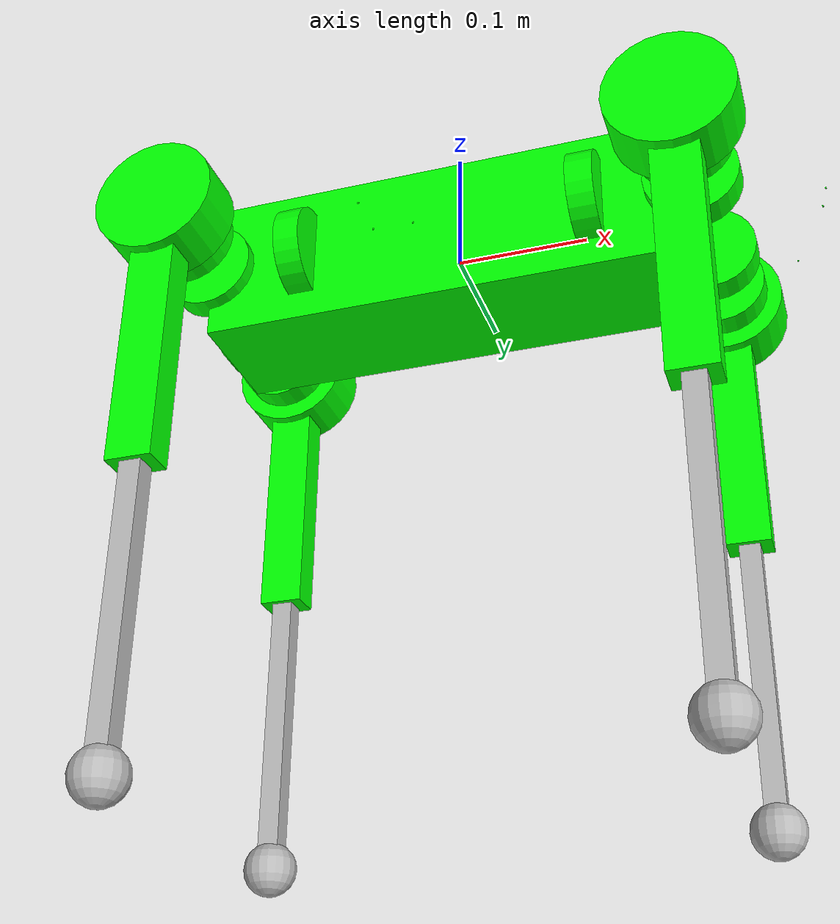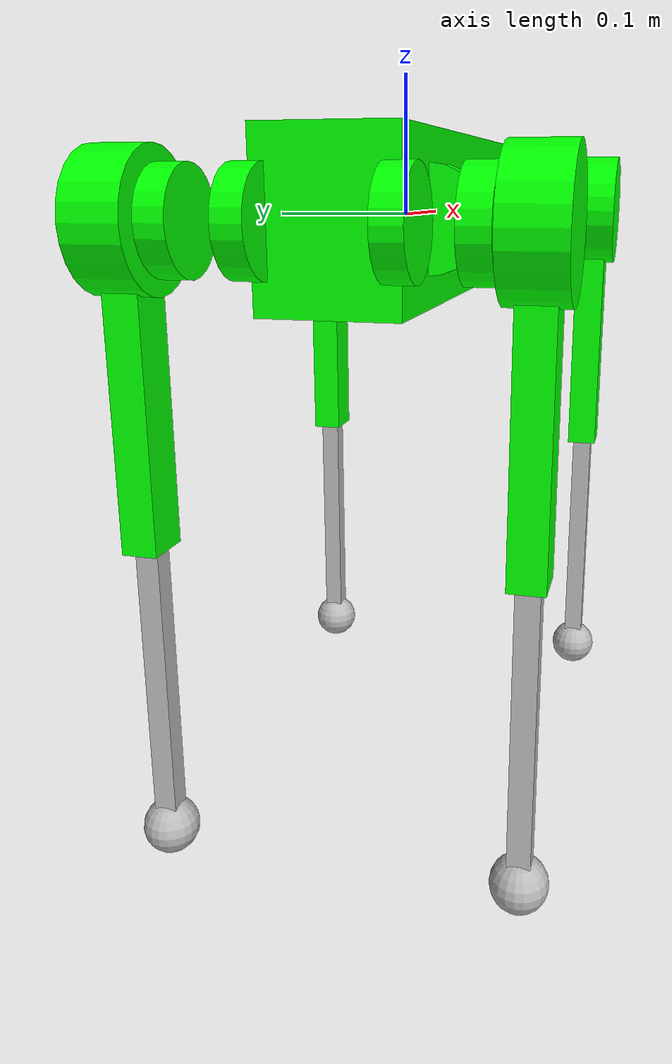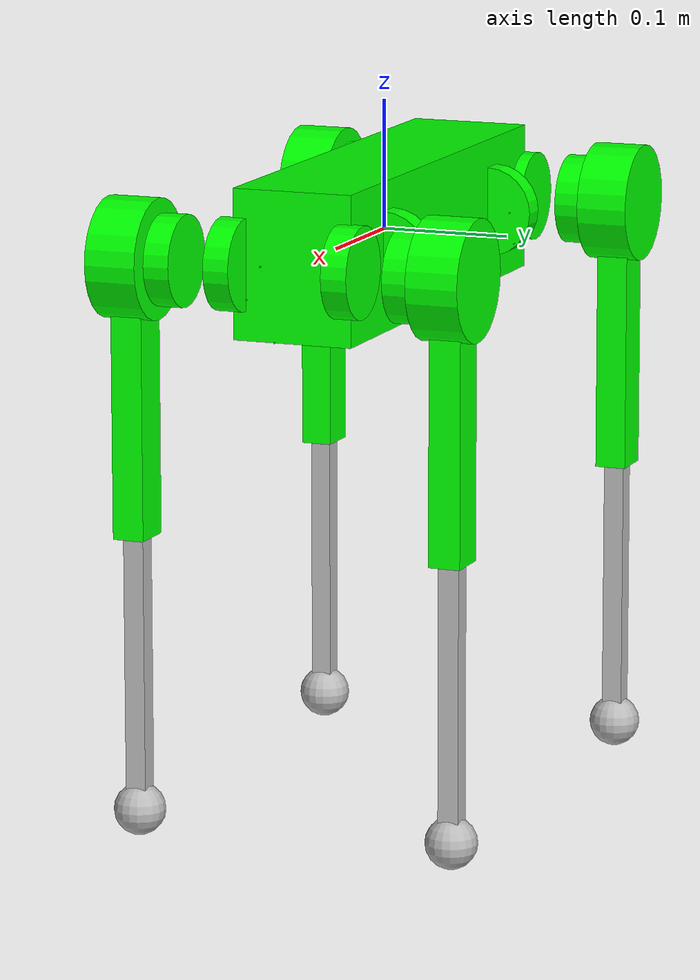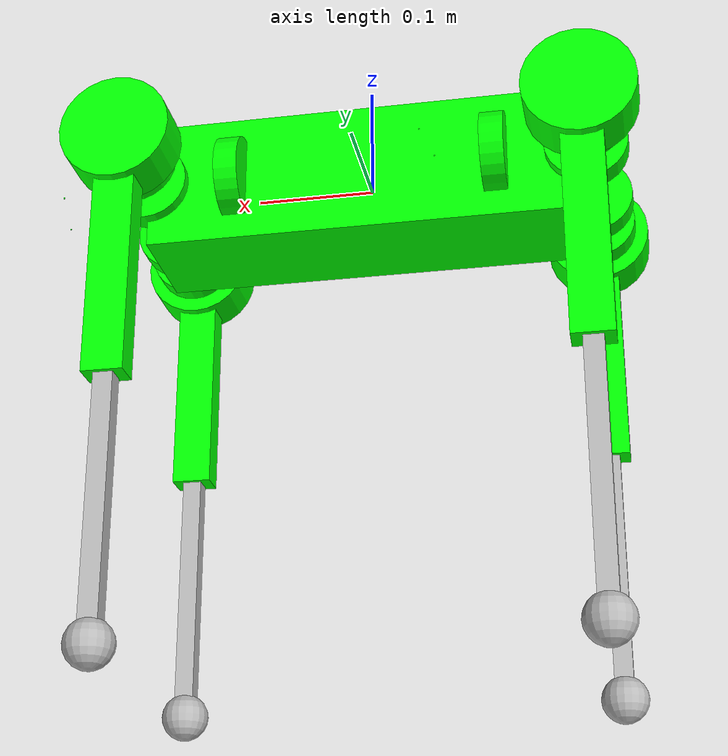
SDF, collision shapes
<sdf version='1.11'>
  <model name='go2'>
    <link name='base'>
      <inertial>
        <pose>0.020866157113366479 0.001859672042121315 -0.00046917899041193432 0 0 0</pose>
        <mass>5.5610799999999987</mass>
        <inertia>
          <ixx>0.018152741714880381</ixx>
          <ixy>-0.00024707762715734321</ixy>
          <ixz>-0.00029100362356646752</ixz>
          <iyy>0.068003178569477754</iyy>
          <iyz>-4.1923289795357292e-05</iyz>
          <izz>0.077432530599337079</izz>
        </inertia>
      </inertial>
      <collision name='base_fixed_joint_lump__trunk_collision'>
        <pose>0 0 0 0 0 0</pose>
        <geometry>
          <box>
            <size>0.37619999999999998 0.0935 0.114</size>
          </box>
        </geometry>
      </collision>
      <collision name='base_fixed_joint_lump__camera_chin_collision_1'>
        <pose>0.25219999999999998 0.012500000000000001 -0.0436 3.1415926535897931 1.5707963267948966 0</pose>
        <geometry>
          <box>
            <size>0.001 0.001 0.001</size>
          </box>
        </geometry>
      </collision>
      <collision name='base_fixed_joint_lump__camera_face_collision_2'>
        <pose>0.27850000000000003 0.012500000000000001 0.0167 3.1415926535897931 0 0</pose>
        <geometry>
          <box>
            <size>0.001 0.001 0.001</size>
          </box>
        </geometry>
      </collision>
      <collision name='base_fixed_joint_lump__camera_left_collision_3'>
        <pose>-0.066000000000000003 0.082000000000000003 -0.017600000000000001 3.1415926535897931 0.26179999999999998 1.5707963267948957</pose>
        <geometry>
          <box>
            <size>0.001 0.001 0.001</size>
          </box>
        </geometry>
      </collision>
      <collision name='base_fixed_joint_lump__camera_rearDown_collision_4'>
        <pose>-0.082500000000000004 0.012500000000000001 -0.043650000000000001 3.1415926535897931 1.5707963267948966 0</pose>
        <geometry>
          <box>
            <size>0.001 0.001 0.001</size>
          </box>
        </geometry>
      </collision>
      <collision name='base_fixed_joint_lump__camera_right_collision_5'>
        <pose>-0.041000000000000002 -0.082000000000000003 -0.017600000000000001 3.1415926535897931 0.26179999999999998 -1.570796326794897</pose>
        <geometry>
          <box>
            <size>0.001 0.001 0.001</size>
          </box>
        </geometry>
      </collision>
      <collision name='base_fixed_joint_lump__imu_link_collision_6'>
        <pose>-0.01592 -0.066589999999999996 -0.0061700000000000001 0 0 0</pose>
        <geometry>
          <box>
            <size>0.001 0.001 0.001</size>
          </box>
        </geometry>
      </collision>
      <collision name='base_fixed_joint_lump__lf_hipassembly_rotor_collision_7'>
        <pose>0.11215 0.04675 0 0 1.5707963267948966 0</pose>
        <geometry>
          <cylinder>
            <length>0.02</length>
            <radius>0.035000000000000003</radius>
          </cylinder>
        </geometry>
      </collision>
      <collision name='base_fixed_joint_lump__lh_hipassembly_rotor_collision_8'>
        <pose>-0.11215 0.04675 0 0 1.5707963267948966 0</pose>
        <geometry>
          <cylinder>
            <length>0.02</length>
            <radius>0.035000000000000003</radius>
          </cylinder>
        </geometry>
      </collision>
      <collision name='base_fixed_joint_lump__rf_hipassembly_rotor_collision_9'>
        <pose>0.11215 -0.04675 0 0 1.5707963267948966 0</pose>
        <geometry>
          <cylinder>
            <length>0.02</length>
            <radius>0.035000000000000003</radius>
          </cylinder>
        </geometry>
      </collision>
      <collision name='base_fixed_joint_lump__rh_hipassembly_rotor_collision_10'>
        <pose>-0.11215 -0.04675 0 0 1.5707963267948966 0</pose>
        <geometry>
          <cylinder>
            <length>0.02</length>
            <radius>0.035000000000000003</radius>
          </cylinder>
        </geometry>
      </collision>
      <collision name='base_fixed_joint_lump__ultraSound_face_collision_11'>
        <pose>0.2747 0 -0.0088000000000000005 0 0 0</pose>
        <geometry>
          <box>
            <size>0.001 0.001 0.001</size>
          </box>
        </geometry>
      </collision>
      <collision name='base_fixed_joint_lump__ultraSound_left_collision_12'>
        <pose>-0.053499999999999999 0.082600000000000007 0.0086800000000000002 0 0.26179999999999998 1.570796326794897</pose>
        <geometry>
          <box>
            <size>0.001 0.001 0.001</size>
          </box>
        </geometry>
      </collision>
      <collision name='base_fixed_joint_lump__ultraSound_right_collision_13'>
        <pose>-0.053499999999999999 -0.082600000000000007 0.0086800000000000002 0 0.26179999999999998 -1.570796326794897</pose>
        <geometry>
          <box>
            <size>0.001 0.001 0.001</size>
          </box>
        </geometry>
      </collision>
      <visual name='base_visual'>
        <pose>0 0 0 0 0 0</pose>
        <geometry>
          <box>
            <size>0.001 0.001 0.001</size>
          </box>
        </geometry>
      </visual>
      <visual name='base_fixed_joint_lump__trunk_visual_1'>
        <pose>0 0 0 0 0 0</pose>
        <geometry>
          <mesh>
            <scale>1 1 1</scale>
            <uri>models/unitree_go2/meshes/trunk/trunk.dae</uri>
          </mesh>
        </geometry>
      </visual>
      <visual name='base_fixed_joint_lump__camera_chin_visual_2'>
        <pose>0.25219999999999998 0.012500000000000001 -0.0436 3.1415926535897931 1.5707963267948966 0</pose>
        <geometry>
          <mesh>
            <scale>1 1 1</scale>
            <uri>models/unitree_go2/meshes/depthCamera.dae</uri>
          </mesh>
        </geometry>
      </visual>
      <visual name='base_fixed_joint_lump__camera_face_visual_3'>
        <pose>0.27850000000000003 0.012500000000000001 0.0167 3.1415926535897931 0 0</pose>
        <geometry>
          <mesh>
            <scale>1 1 1</scale>
            <uri>models/unitree_go2/meshes/depthCamera.dae</uri>
          </mesh>
        </geometry>
      </visual>
      <visual name='base_fixed_joint_lump__camera_left_visual_4'>
        <pose>-0.066000000000000003 0.082000000000000003 -0.017600000000000001 3.1415926535897931 0.26179999999999998 1.5707963267948957</pose>
        <geometry>
          <mesh>
            <scale>1 1 1</scale>
            <uri>models/unitree_go2/meshes/depthCamera.dae</uri>
          </mesh>
        </geometry>
      </visual>
      <visual name='base_fixed_joint_lump__camera_rearDown_visual_5'>
        <pose>-0.082500000000000004 0.012500000000000001 -0.043650000000000001 3.1415926535897931 1.5707963267948966 0</pose>
        <geometry>
          <mesh>
            <scale>1 1 1</scale>
            <uri>models/unitree_go2/meshes/depthCamera.dae</uri>
          </mesh>
        </geometry>
      </visual>
      <visual name='base_fixed_joint_lump__camera_right_visual_6'>
        <pose>-0.041000000000000002 -0.082000000000000003 -0.017600000000000001 3.1415926535897931 0.26179999999999998 -1.570796326794897</pose>
        <geometry>
          <mesh>
            <scale>1 1 1</scale>
            <uri>models/unitree_go2/meshes/depthCamera.dae</uri>
          </mesh>
        </geometry>
      </visual>
      <visual name='base_fixed_joint_lump__imu_link_visual_7'>
        <pose>-0.01592 -0.066589999999999996 -0.0061700000000000001 0 0 0</pose>
        <geometry>
          <box>
            <size>0.001 0.001 0.001</size>
          </box>
        </geometry>
      </visual>
      <visual name='base_fixed_joint_lump__lf_hipassembly_rotor_visual_8'>
        <pose>0.11215 0.04675 0 0 1.5707963267948966 0</pose>
        <geometry>
          <cylinder>
            <length>0.02</length>
            <radius>0.035000000000000003</radius>
          </cylinder>
        </geometry>
        <material>
          <diffuse>0 1 0 1</diffuse>
          <ambient>0 1 0 1</ambient>
        </material>
      </visual>
      <visual name='base_fixed_joint_lump__lh_hipassembly_rotor_visual_9'>
        <pose>-0.11215 0.04675 0 0 1.5707963267948966 0</pose>
        <geometry>
          <cylinder>
            <length>0.02</length>
            <radius>0.035000000000000003</radius>
          </cylinder>
        </geometry>
        <material>
          <diffuse>0 1 0 1</diffuse>
          <ambient>0 1 0 1</ambient>
        </material>
      </visual>
      <visual name='base_fixed_joint_lump__rf_hipassembly_rotor_visual_10'>
        <pose>0.11215 -0.04675 0 0 1.5707963267948966 0</pose>
        <geometry>
          <cylinder>
            <length>0.02</length>
            <radius>0.035000000000000003</radius>
          </cylinder>
        </geometry>
        <material>
          <diffuse>0 1 0 1</diffuse>
          <ambient>0 1 0 1</ambient>
        </material>
      </visual>
      <visual name='base_fixed_joint_lump__rh_hipassembly_rotor_visual_11'>
        <pose>-0.11215 -0.04675 0 0 1.5707963267948966 0</pose>
        <geometry>
          <cylinder>
            <length>0.02</length>
            <radius>0.035000000000000003</radius>
          </cylinder>
        </geometry>
        <material>
          <diffuse>0 1 0 1</diffuse>
          <ambient>0 1 0 1</ambient>
        </material>
      </visual>
      <visual name='base_fixed_joint_lump__ultraSound_face_visual_12'>
        <pose>0.2747 0 -0.0088000000000000005 0 0 0</pose>
        <geometry>
          <mesh>
            <scale>1 1 1</scale>
            <uri>models/unitree_go2/meshes/ultraSound.dae</uri>
          </mesh>
        </geometry>
        <material>
          <diffuse>0 0 0 1</diffuse>
          <ambient>0 0 0 1</ambient>
        </material>
      </visual>
      <visual name='base_fixed_joint_lump__ultraSound_left_visual_13'>
        <pose>-0.053499999999999999 0.082600000000000007 0.0086800000000000002 0 0.26179999999999998 1.570796326794897</pose>
        <geometry>
          <mesh>
            <scale>1 1 1</scale>
            <uri>models/unitree_go2/meshes/ultraSound.dae</uri>
          </mesh>
        </geometry>
        <material>
          <diffuse>0 0 0 1</diffuse>
          <ambient>0 0 0 1</ambient>
        </material>
      </visual>
      <visual name='base_fixed_joint_lump__ultraSound_right_visual_14'>
        <pose>-0.053499999999999999 -0.082600000000000007 0.0086800000000000002 0 0.26179999999999998 -1.570796326794897</pose>
        <geometry>
          <mesh>
            <scale>1 1 1</scale>
            <uri>models/unitree_go2/meshes/ultraSound.dae</uri>
          </mesh>
        </geometry>
        <material>
          <diffuse>0 0 0 1</diffuse>
          <ambient>0 0 0 1</ambient>
        </material>
      </visual>
      <sensor name="imu" type="imu">
        <always_on>1</always_on>
        <update_rate>100</update_rate>
        <visualize>true</visualize>
        <topic>/model/go2/link/base/sensor/imu/imu</topic>
      </sensor>
    </link>
    <joint name='lf_haa_joint' type='revolute'>
      <pose relative_to='base'>0.18809999999999999 0.04675 0 0 0 0</pose>
      <parent>base</parent>
      <child>lf_hipassembly</child>
      <axis>
        <xyz>1 0 0</xyz>
        <initial_position>0</initial_position>
        <limit>
          <lower>-0.86299999999999999</lower>
          <upper>0.86299999999999999</upper>
          <effort>23.699999999999999</effort>
          <velocity>30.100000000000001</velocity>
        </limit>
        <dynamics>
          <damping>0.1</damping>
          <friction>0.05</friction>
          <spring_reference>0</spring_reference>
          <spring_stiffness>0</spring_stiffness>
        </dynamics>
      </axis>
    </joint>
    <link name='lf_hipassembly'>
      <pose relative_to='lf_haa_joint'>0 0 0 0 0 0</pose>
      <inertial>
        <pose>-0.0049165985294117639 -0.0076261499999999991 -8.865e-05 0 0 0</pose>
        <mass>0.67999999999999994</mass>
        <inertia>
          <ixx>0.0003993797857294</ixx>
          <ixy>-1.4590105668949999e-05</ixy>
          <ixz>1.2460991185500001e-06</ixz>
          <iyy>0.00073341939237609854</iyy>
          <iyz>1.5753255103e-06</iyz>
          <izz>0.00046842209057609862</izz>
        </inertia>
      </inertial>
      <collision name='lf_hipassembly_collision'>
        <pose>0 0.080000000000000002 0 1.5707963267948959 0 0</pose>
        <geometry>
          <cylinder>
            <length>0.040000000000000001</length>
            <radius>0.045999999999999999</radius>
          </cylinder>
        </geometry>
      </collision>
      <collision name='lf_hipassembly_fixed_joint_lump__lf_upperleg_rotor_collision_1'>
        <pose>0 -0.00014999999999999999 0 1.5707963267948959 0 0</pose>
        <geometry>
          <cylinder>
            <length>0.02</length>
            <radius>0.035000000000000003</radius>
          </cylinder>
        </geometry>
      </collision>
      <visual name='lf_hipassembly_visual'>
        <pose>0 0 0 0 0 0</pose>
        <geometry>
          <mesh>
            <scale>1 1 1</scale>
            <uri>models/unitree_go2/meshes/leg/hipassembly.dae</uri>
          </mesh>
        </geometry>
      </visual>
      <visual name='lf_hipassembly_fixed_joint_lump__lf_upperleg_rotor_visual_1'>
        <pose>0 -0.00014999999999999999 0 1.5707963267948959 0 0</pose>
        <geometry>
          <cylinder>
            <length>0.02</length>
            <radius>0.035000000000000003</radius>
          </cylinder>
        </geometry>
        <material>
          <diffuse>0 1 0 1</diffuse>
          <ambient>0 1 0 1</ambient>
        </material>
      </visual>
    </link>
    <joint name='lf_hfe_joint' type='revolute'>
      <pose relative_to='lf_hipassembly'>0 0.080000000000000002 0 0 0 0</pose>
      <parent>lf_hipassembly</parent>
      <child>lf_upperleg</child>
      <axis>
        <xyz>0 1 0</xyz>
        <initial_position>0.8</initial_position>
        <limit>
          <lower>-0.68600000000000005</lower>
          <upper>4.5010000000000003</upper>
          <effort>23.699999999999999</effort>
          <velocity>30.100000000000001</velocity>
        </limit>
        <dynamics>
          <damping>0.1</damping>
          <friction>0.05</friction>
          <spring_reference>0</spring_reference>
          <spring_stiffness>0</spring_stiffness>
        </dynamics>
      </axis>
    </joint>
    <link name='lf_upperleg'>
      <pose relative_to='lf_hfe_joint'>0 0 0 0 0 0</pose>
      <inertial>
        <pose>-0.0030472150644202181 -0.019314995044598611 -0.03050041625371655 0 0 0</pose>
        <mass>1.0089999999999999</mass>
        <inertia>
          <ixx>0.0045987964610901466</ixx>
          <ixy>6.1373912803924688e-05</ixy>
          <ixz>-0.00022752911680967291</ixz>
          <iyy>0.0046892240622995037</iyy>
          <iyz>0.00061080828661791886</iyz>
          <izz>0.00081744785689930629</izz>
        </inertia>
      </inertial>
      <collision name='lf_upperleg_collision'>
        <pose>0 0 -0.1065 0 1.5707963267948966 0</pose>
        <geometry>
          <box>
            <size>0.21299999999999999 0.024500000000000001 0.034000000000000002</size>
          </box>
        </geometry>
      </collision>
      <collision name='lf_upperleg_fixed_joint_lump__lf_lowerleg_rotor_collision_1'>
        <pose>0 -0.032349999999999997 0 1.5707963267948959 0 0</pose>
        <geometry>
          <cylinder>
            <length>0.02</length>
            <radius>0.035000000000000003</radius>
          </cylinder>
        </geometry>
      </collision>
      <visual name='lf_upperleg_visual'>
        <pose>0 0 0 0 0 0</pose>
        <geometry>
          <mesh>
            <scale>1 1 1</scale>
            <uri>models/unitree_go2/meshes/leg/upperleg.dae</uri>
          </mesh>
        </geometry>
      </visual>
      <visual name='lf_upperleg_fixed_joint_lump__lf_lowerleg_rotor_visual_1'>
        <pose>0 -0.032349999999999997 0 1.5707963267948959 0 0</pose>
        <geometry>
          <cylinder>
            <length>0.02</length>
            <radius>0.035000000000000003</radius>
          </cylinder>
        </geometry>
        <material>
          <diffuse>0 1 0 1</diffuse>
          <ambient>0 1 0 1</ambient>
        </material>
      </visual>
    </link>
    <joint name='lf_kfe_joint' type='revolute'>
      <pose relative_to='lf_upperleg'>0 0 -0.21299999999999999 0 0 0</pose>
      <parent>lf_upperleg</parent>
      <child>lf_lowerleg</child>
      <axis>
        <xyz>0 1 0</xyz>
        <initial_position>-1.5</initial_position>
        <limit>
          <lower>-2.8180000000000001</lower>
          <upper>-0.88800000000000001</upper>
          <effort>35.549999999999997</effort>
          <velocity>20.059999999999999</velocity>
        </limit>
        <dynamics>
          <damping>0.1</damping>
          <friction>0.05</friction>
          <spring_reference>0</spring_reference>
          <spring_stiffness>0</spring_stiffness>
        </dynamics>
      </axis>
    </joint>
    <link name='lf_lowerleg'>
      <pose relative_to='lf_kfe_joint'>0 0 0 0 0 0</pose>
      <inertial>
        <pose>0.0061970000000000003 0.001408 -0.11669499999999999 0 0 0</pose>
        <mass>0.13586200000000001</mass>
        <inertia>
          <ixx>0.001088793059</ixx>
          <ixy>-2.55679e-07</ixy>
          <ixz>7.1178139999999998e-06</ixz>
          <iyy>0.0011004287479999999</iyy>
          <iyz>2.0772639999999999e-06</iyz>
          <izz>2.4787445999999998e-05</izz>
        </inertia>
      </inertial>
      <collision name='lf_lowerleg_collision'>
        <pose>0 0 -0.1065 0 1.5707963267948966 0</pose>
        <geometry>
          <box>
            <size>0.21299999999999999 0.016 0.016</size>
          </box>
        </geometry>
      </collision>
      <visual name='lf_lowerleg_visual'>
        <pose>0 0 0 0 0 0</pose>
        <geometry>
          <mesh>
            <scale>1 1 1</scale>
            <uri>models/unitree_go2/meshes/leg/lowerleg.dae</uri>
          </mesh>
        </geometry>
      </visual>
    </link>
    <joint name='lf_foot_joint' type='revolute'>
      <pose relative_to='lf_lowerleg'>0 0 -0.21299999999999999 0 0 0</pose>
      <parent>lf_lowerleg</parent>
      <child>lf_foot</child>
      <axis>
        <xyz>1 0 0</xyz>
        <limit>
          <lower>1</lower>
          <upper>1</upper>
          <effort>1</effort>
          <velocity>1</velocity>
        </limit>
        <dynamics>
          <spring_reference>0</spring_reference>
          <spring_stiffness>0</spring_stiffness>
        </dynamics>
      </axis>
    </joint>
    <link name='lf_foot'>
      <pose relative_to='lf_foot_joint'>0 0 0 0 0 0</pose>
      <inertial>
        <pose>0 0 0 0 0 0</pose>
        <mass>6.0000000000000003e-12</mass>
        <inertia>
          <ixx>9.6000000000000013e-06</ixx>
          <ixy>0</ixy>
          <ixz>0</ixz>
          <iyy>9.6000000000000013e-06</iyy>
          <iyz>0</iyz>
          <izz>9.6000000000000013e-06</izz>
        </inertia>
      </inertial>
      <collision name='lf_foot_collision'>
        <pose>0 0 0 0 0 0</pose>
        <geometry>
          <sphere>
            <radius>0.02</radius>
          </sphere>
        </geometry>
      </collision>
      <visual name='lf_foot_visual'>
        <pose>0 0 0 0 0 0</pose>
        <geometry>
          <sphere>
            <radius>0.01</radius>
          </sphere>
        </geometry>
      </visual>
    </link>
    <joint name='lh_haa_joint' type='revolute'>
      <pose relative_to='base'>-0.18809999999999999 0.04675 0 0 0 0</pose>
      <parent>base</parent>
      <child>lh_hipassembly</child>
      <axis>
        <xyz>1 0 0</xyz>
        <initial_position>0</initial_position>
        <limit>
          <lower>-0.86299999999999999</lower>
          <upper>0.86299999999999999</upper>
          <effort>23.699999999999999</effort>
          <velocity>30.100000000000001</velocity>
        </limit>
        <dynamics>
          <damping>0.1</damping>
          <friction>0.05</friction>
          <spring_reference>0</spring_reference>
          <spring_stiffness>0</spring_stiffness>
        </dynamics>
      </axis>
    </joint>
    <link name='lh_hipassembly'>
      <pose relative_to='lh_haa_joint'>0 0 0 0 0 0</pose>
      <inertial>
        <pose>0.0049165985294117639 -0.0076261499999999991 -8.865e-05 0 0 0</pose>
        <mass>0.67999999999999994</mass>
        <inertia>
          <ixx>0.0003993797857294</ixx>
          <ixy>1.4590105668949999e-05</ixy>
          <ixz>-1.2460991185500001e-06</ixz>
          <iyy>0.00073341939237609854</iyy>
          <iyz>1.5753255103e-06</iyz>
          <izz>0.00046842209057609862</izz>
        </inertia>
      </inertial>
      <collision name='lh_hipassembly_collision'>
        <pose>0 0.080000000000000002 0 1.5707963267948959 0 0</pose>
        <geometry>
          <cylinder>
            <length>0.040000000000000001</length>
            <radius>0.045999999999999999</radius>
          </cylinder>
        </geometry>
      </collision>
      <collision name='lh_hipassembly_fixed_joint_lump__lh_upperleg_rotor_collision_1'>
        <pose>0 -0.00014999999999999999 0 1.5707963267948959 0 0</pose>
        <geometry>
          <cylinder>
            <length>0.02</length>
            <radius>0.035000000000000003</radius>
          </cylinder>
        </geometry>
      </collision>
      <visual name='lh_hipassembly_visual'>
        <pose>0 0 0 3.1415926535897931 1.224646799147353e-16 3.1415926535897931</pose>
        <geometry>
          <mesh>
            <scale>1 1 1</scale>
            <uri>models/unitree_go2/meshes/leg/hipassembly.dae</uri>
          </mesh>
        </geometry>
      </visual>
      <visual name='lh_hipassembly_fixed_joint_lump__lh_upperleg_rotor_visual_1'>
        <pose>0 -0.00014999999999999999 0 1.5707963267948959 0 0</pose>
        <geometry>
          <cylinder>
            <length>0.02</length>
            <radius>0.035000000000000003</radius>
          </cylinder>
        </geometry>
        <material>
          <diffuse>0 1 0 1</diffuse>
          <ambient>0 1 0 1</ambient>
        </material>
      </visual>
    </link>
    <joint name='lh_hfe_joint' type='revolute'>
      <pose relative_to='lh_hipassembly'>0 0.080000000000000002 0 0 0 0</pose>
      <parent>lh_hipassembly</parent>
      <child>lh_upperleg</child>
      <axis>
        <xyz>0 1 0</xyz>
        <initial_position>1.0</initial_position>
        <limit>
          <lower>-0.68600000000000005</lower>
          <upper>4.5010000000000003</upper>
          <effort>23.699999999999999</effort>
          <velocity>30.100000000000001</velocity>
        </limit>
        <dynamics>
          <damping>0.1</damping>
          <friction>0.05</friction>
          <spring_reference>0</spring_reference>
          <spring_stiffness>0</spring_stiffness>
        </dynamics>
      </axis>
    </joint>
    <link name='lh_upperleg'>
      <pose relative_to='lh_hfe_joint'>0 0 0 0 0 0</pose>
      <inertial>
        <pose>-0.0030472150644202181 -0.019314995044598611 -0.03050041625371655 0 0 0</pose>
        <mass>1.0089999999999999</mass>
        <inertia>
          <ixx>0.0045987964610901466</ixx>
          <ixy>6.1373912803924688e-05</ixy>
          <ixz>-0.00022752911680967291</ixz>
          <iyy>0.0046892240622995037</iyy>
          <iyz>0.00061080828661791886</iyz>
          <izz>0.00081744785689930629</izz>
        </inertia>
      </inertial>
      <collision name='lh_upperleg_collision'>
        <pose>0 0 -0.1065 0 1.5707963267948966 0</pose>
        <geometry>
          <box>
            <size>0.21299999999999999 0.024500000000000001 0.034000000000000002</size>
          </box>
        </geometry>
      </collision>
      <collision name='lh_upperleg_fixed_joint_lump__lh_lowerleg_rotor_collision_1'>
        <pose>0 -0.032349999999999997 0 1.5707963267948959 0 0</pose>
        <geometry>
          <cylinder>
            <length>0.02</length>
            <radius>0.035000000000000003</radius>
          </cylinder>
        </geometry>
      </collision>
      <visual name='lh_upperleg_visual'>
        <pose>0 0 0 0 0 0</pose>
        <geometry>
          <mesh>
            <scale>1 1 1</scale>
            <uri>models/unitree_go2/meshes/leg/upperleg.dae</uri>
          </mesh>
        </geometry>
      </visual>
      <visual name='lh_upperleg_fixed_joint_lump__lh_lowerleg_rotor_visual_1'>
        <pose>0 -0.032349999999999997 0 1.5707963267948959 0 0</pose>
        <geometry>
          <cylinder>
            <length>0.02</length>
            <radius>0.035000000000000003</radius>
          </cylinder>
        </geometry>
        <material>
          <diffuse>0 1 0 1</diffuse>
          <ambient>0 1 0 1</ambient>
        </material>
      </visual>
    </link>
    <joint name='lh_kfe_joint' type='revolute'>
      <pose relative_to='lh_upperleg'>0 0 -0.21299999999999999 0 0 0</pose>
      <parent>lh_upperleg</parent>
      <child>lh_lowerleg</child>
      <axis>
        <xyz>0 1 0</xyz>
        <initial_position>-1.5</initial_position>
        <limit>
          <lower>-2.8180000000000001</lower>
          <upper>-0.88800000000000001</upper>
          <effort>35.549999999999997</effort>
          <velocity>20.059999999999999</velocity>
        </limit>
        <dynamics>
          <damping>0.1</damping>
          <friction>0.05</friction>
          <spring_reference>0</spring_reference>
          <spring_stiffness>0</spring_stiffness>
        </dynamics>
      </axis>
    </joint>
    <link name='lh_lowerleg'>
      <pose relative_to='lh_kfe_joint'>0 0 0 0 0 0</pose>
      <inertial>
        <pose>0.0061970000000000003 0.001408 -0.11669499999999999 0 0 0</pose>
        <mass>0.13586200000000001</mass>
        <inertia>
          <ixx>0.001088793059</ixx>
          <ixy>-2.55679e-07</ixy>
          <ixz>7.1178139999999998e-06</ixz>
          <iyy>0.0011004287479999999</iyy>
          <iyz>2.0772639999999999e-06</iyz>
          <izz>2.4787445999999998e-05</izz>
        </inertia>
      </inertial>
      <collision name='lh_lowerleg_collision'>
        <pose>0 0 -0.1065 0 1.5707963267948966 0</pose>
        <geometry>
          <box>
            <size>0.21299999999999999 0.016 0.016</size>
          </box>
        </geometry>
      </collision>
      <visual name='lh_lowerleg_visual'>
        <pose>0 0 0 0 0 0</pose>
        <geometry>
          <mesh>
            <scale>1 1 1</scale>
            <uri>models/unitree_go2/meshes/leg/lowerleg.dae</uri>
          </mesh>
        </geometry>
      </visual>
    </link>
    <joint name='lh_foot_joint' type='revolute'>
      <pose relative_to='lh_lowerleg'>0 0 -0.21299999999999999 0 0 0</pose>
      <parent>lh_lowerleg</parent>
      <child>lh_foot</child>
      <axis>
        <xyz>1 0 0</xyz>
        <limit>
          <lower>1</lower>
          <upper>1</upper>
          <effort>1</effort>
          <velocity>1</velocity>
        </limit>
        <dynamics>
          <spring_reference>0</spring_reference>
          <spring_stiffness>0</spring_stiffness>
        </dynamics>
      </axis>
    </joint>
    <link name='lh_foot'>
      <pose relative_to='lh_foot_joint'>0 0 0 0 0 0</pose>
      <inertial>
        <pose>0 0 0 0 0 0</pose>
        <mass>6.0000000000000003e-12</mass>
        <inertia>
          <ixx>9.6000000000000013e-06</ixx>
          <ixy>0</ixy>
          <ixz>0</ixz>
          <iyy>9.6000000000000013e-06</iyy>
          <iyz>0</iyz>
          <izz>9.6000000000000013e-06</izz>
        </inertia>
      </inertial>
      <collision name='lh_foot_collision'>
        <pose>0 0 0 0 0 0</pose>
        <geometry>
          <sphere>
            <radius>0.02</radius>
          </sphere>
        </geometry>
      </collision>
      <visual name='lh_foot_visual'>
        <pose>0 0 0 0 0 0</pose>
        <geometry>
          <sphere>
            <radius>0.01</radius>
          </sphere>
        </geometry>
      </visual>
    </link>
    <joint name='rf_haa_joint' type='revolute'>
      <pose relative_to='base'>0.18809999999999999 -0.04675 0 0 0 0</pose>
      <parent>base</parent>
      <child>rf_hipassembly</child>
      <axis>
        <xyz>1 0 0</xyz>
        <initial_position>0</initial_position>
        <limit>
          <lower>-0.86299999999999999</lower>
          <upper>0.86299999999999999</upper>
          <effort>23.699999999999999</effort>
          <velocity>30.100000000000001</velocity>
        </limit>
        <dynamics>
          <damping>0.1</damping>
          <friction>0.05</friction>
          <spring_reference>0</spring_reference>
          <spring_stiffness>0</spring_stiffness>
        </dynamics>
      </axis>
    </joint>
    <link name='rf_hipassembly'>
      <pose relative_to='rf_haa_joint'>0 0 0 0 0 0</pose>
      <inertial>
        <pose>-0.0049165985294117639 0.0076261499999999991 -8.865e-05 0 0 0</pose>
        <mass>0.67999999999999994</mass>
        <inertia>
          <ixx>0.0003993797857294</ixx>
          <ixy>1.4590105668949999e-05</ixy>
          <ixz>1.2460991185500001e-06</ixz>
          <iyy>0.00073341939237609854</iyy>
          <iyz>-1.5753255103e-06</iyz>
          <izz>0.00046842209057609862</izz>
        </inertia>
      </inertial>
      <collision name='rf_hipassembly_collision'>
        <pose>0 -0.080000000000000002 0 1.5707963267948959 0 0</pose>
        <geometry>
          <cylinder>
            <length>0.040000000000000001</length>
            <radius>0.045999999999999999</radius>
          </cylinder>
        </geometry>
      </collision>
      <collision name='rf_hipassembly_fixed_joint_lump__rf_upperleg_rotor_collision_1'>
        <pose>0 0.00014999999999999999 0 1.5707963267948959 0 0</pose>
        <geometry>
          <cylinder>
            <length>0.02</length>
            <radius>0.035000000000000003</radius>
          </cylinder>
        </geometry>
      </collision>
      <visual name='rf_hipassembly_visual'>
        <pose>0 0 0 3.1415926535897931 0 0</pose>
        <geometry>
          <mesh>
            <scale>1 1 1</scale>
            <uri>models/unitree_go2/meshes/leg/hipassembly.dae</uri>
          </mesh>
        </geometry>
      </visual>
      <visual name='rf_hipassembly_fixed_joint_lump__rf_upperleg_rotor_visual_1'>
        <pose>0 0.00014999999999999999 0 1.5707963267948959 0 0</pose>
        <geometry>
          <cylinder>
            <length>0.02</length>
            <radius>0.035000000000000003</radius>
          </cylinder>
        </geometry>
        <material>
          <diffuse>0 1 0 1</diffuse>
          <ambient>0 1 0 1</ambient>
        </material>
      </visual>
    </link>
    <joint name='rf_hfe_joint' type='revolute'>
      <pose relative_to='rf_hipassembly'>0 -0.080000000000000002 0 0 0 0</pose>
      <parent>rf_hipassembly</parent>
      <child>rf_upperleg</child>
      <axis>
        <xyz>0 1 0</xyz>
        <initial_position>0.8</initial_position>
        <limit>
          <lower>-0.68600000000000005</lower>
          <upper>4.5010000000000003</upper>
          <effort>23.699999999999999</effort>
          <velocity>30.100000000000001</velocity>
        </limit>
        <dynamics>
          <damping>0.1</damping>
          <friction>0.05</friction>
          <spring_reference>0</spring_reference>
          <spring_stiffness>0</spring_stiffness>
        </dynamics>
      </axis>
    </joint>
    <link name='rf_upperleg'>
      <pose relative_to='rf_hfe_joint'>0 0 0 0 0 0</pose>
      <inertial>
        <pose>-0.0030472150644202181 0.019314995044598611 -0.03050041625371655 0 0 0</pose>
        <mass>1.0089999999999999</mass>
        <inertia>
          <ixx>0.0045987964610901466</ixx>
          <ixy>-6.1373912803924688e-05</ixy>
          <ixz>-0.00022752911680967291</ixz>
          <iyy>0.0046892240622995037</iyy>
          <iyz>-0.00061080828661791886</iyz>
          <izz>0.00081744785689930629</izz>
        </inertia>
      </inertial>
      <collision name='rf_upperleg_collision'>
        <pose>0 0 -0.1065 0 1.5707963267948966 0</pose>
        <geometry>
          <box>
            <size>0.21299999999999999 0.024500000000000001 0.034000000000000002</size>
          </box>
        </geometry>
      </collision>
      <collision name='rf_upperleg_fixed_joint_lump__rf_lowerleg_rotor_collision_1'>
        <pose>0 0.032349999999999997 0 1.5707963267948959 0 0</pose>
        <geometry>
          <cylinder>
            <length>0.02</length>
            <radius>0.035000000000000003</radius>
          </cylinder>
        </geometry>
      </collision>
      <visual name='rf_upperleg_visual'>
        <pose>0 0 0 0 0 0</pose>
        <geometry>
          <mesh>
            <scale>1 1 1</scale>
            <uri>models/unitree_go2/meshes/upperleg_mirror.dae</uri>
          </mesh>
        </geometry>
      </visual>
      <visual name='rf_upperleg_fixed_joint_lump__rf_lowerleg_rotor_visual_1'>
        <pose>0 0.032349999999999997 0 1.5707963267948959 0 0</pose>
        <geometry>
          <cylinder>
            <length>0.02</length>
            <radius>0.035000000000000003</radius>
          </cylinder>
        </geometry>
        <material>
          <diffuse>0 1 0 1</diffuse>
          <ambient>0 1 0 1</ambient>
        </material>
      </visual>
    </link>
    <joint name='rf_kfe_joint' type='revolute'>
      <pose relative_to='rf_upperleg'>0 0 -0.21299999999999999 0 0 0</pose>
      <parent>rf_upperleg</parent>
      <child>rf_lowerleg</child>
      <axis>
        <xyz>0 1 0</xyz>
        <initial_position>-1.5</initial_position>
        <limit>
          <lower>-2.8180000000000001</lower>
          <upper>-0.88800000000000001</upper>
          <effort>35.549999999999997</effort>
          <velocity>20.059999999999999</velocity>
        </limit>
        <dynamics>
          <damping>0.1</damping>
          <friction>0.05</friction>
          <spring_reference>0</spring_reference>
          <spring_stiffness>0</spring_stiffness>
        </dynamics>
      </axis>
    </joint>
    <link name='rf_lowerleg'>
      <pose relative_to='rf_kfe_joint'>0 0 0 0 0 0</pose>
      <inertial>
        <pose>0.0061970000000000003 0.001408 -0.11669499999999999 0 0 0</pose>
        <mass>0.13586200000000001</mass>
        <inertia>
          <ixx>0.001088793059</ixx>
          <ixy>-2.55679e-07</ixy>
          <ixz>7.1178139999999998e-06</ixz>
          <iyy>0.0011004287479999999</iyy>
          <iyz>2.0772639999999999e-06</iyz>
          <izz>2.4787445999999998e-05</izz>
        </inertia>
      </inertial>
      <collision name='rf_lowerleg_collision'>
        <pose>0 0 -0.1065 0 1.5707963267948966 0</pose>
        <geometry>
          <box>
            <size>0.21299999999999999 0.016 0.016</size>
          </box>
        </geometry>
      </collision>
      <visual name='rf_lowerleg_visual'>
        <pose>0 0 0 0 0 0</pose>
        <geometry>
          <mesh>
            <scale>1 1 1</scale>
            <uri>models/unitree_go2/meshes/leg/lowerleg.dae</uri>
          </mesh>
        </geometry>
      </visual>
    </link>
    <joint name='rf_foot_joint' type='revolute'>
      <pose relative_to='rf_lowerleg'>0 0 -0.21299999999999999 0 0 0</pose>
      <parent>rf_lowerleg</parent>
      <child>rf_foot</child>
      <axis>
        <xyz>1 0 0</xyz>
        <limit>
          <lower>1</lower>
          <upper>1</upper>
          <effort>1</effort>
          <velocity>1</velocity>
        </limit>
        <dynamics>
          <spring_reference>0</spring_reference>
          <spring_stiffness>0</spring_stiffness>
        </dynamics>
      </axis>
    </joint>
    <link name='rf_foot'>
      <pose relative_to='rf_foot_joint'>0 0 0 0 0 0</pose>
      <inertial>
        <pose>0 0 0 0 0 0</pose>
        <mass>6.0000000000000003e-12</mass>
        <inertia>
          <ixx>9.6000000000000013e-06</ixx>
          <ixy>0</ixy>
          <ixz>0</ixz>
          <iyy>9.6000000000000013e-06</iyy>
          <iyz>0</iyz>
          <izz>9.6000000000000013e-06</izz>
        </inertia>
      </inertial>
      <collision name='rf_foot_collision'>
        <pose>0 0 0 0 0 0</pose>
        <geometry>
          <sphere>
            <radius>0.02</radius>
          </sphere>
        </geometry>
      </collision>
      <visual name='rf_foot_visual'>
        <pose>0 0 0 0 0 0</pose>
        <geometry>
          <sphere>
            <radius>0.01</radius>
          </sphere>
        </geometry>
      </visual>
    </link>
    <joint name='rh_haa_joint' type='revolute'>
      <pose relative_to='base'>-0.18809999999999999 -0.04675 0 0 0 0</pose>
      <parent>base</parent>
      <child>rh_hipassembly</child>
      <axis>
        <xyz>1 0 0</xyz>
        <initial_position>0</initial_position>
        <limit>
          <lower>-0.86299999999999999</lower>
          <upper>0.86299999999999999</upper>
          <effort>23.699999999999999</effort>
          <velocity>30.100000000000001</velocity>
        </limit>
        <dynamics>
          <damping>0.1</damping>
          <friction>0.05</friction>
          <spring_reference>0</spring_reference>
          <spring_stiffness>0</spring_stiffness>
        </dynamics>
      </axis>
    </joint>
    <link name='rh_hipassembly'>
      <pose relative_to='rh_haa_joint'>0 0 0 0 0 0</pose>
      <inertial>
        <pose>0.0049165985294117639 0.0076261499999999991 -8.865e-05 0 0 0</pose>
        <mass>0.67999999999999994</mass>
        <inertia>
          <ixx>0.0003993797857294</ixx>
          <ixy>-1.4590105668949999e-05</ixy>
          <ixz>-1.2460991185500001e-06</ixz>
          <iyy>0.00073341939237609854</iyy>
          <iyz>-1.5753255103e-06</iyz>
          <izz>0.00046842209057609862</izz>
        </inertia>
      </inertial>
      <collision name='rh_hipassembly_collision'>
        <pose>0 -0.080000000000000002 0 1.5707963267948959 0 0</pose>
        <geometry>
          <cylinder>
            <length>0.040000000000000001</length>
            <radius>0.045999999999999999</radius>
          </cylinder>
        </geometry>
      </collision>
      <collision name='rh_hipassembly_fixed_joint_lump__rh_upperleg_rotor_collision_1'>
        <pose>0 0.00014999999999999999 0 1.5707963267948959 0 0</pose>
        <geometry>
          <cylinder>
            <length>0.02</length>
            <radius>0.035000000000000003</radius>
          </cylinder>
        </geometry>
      </collision>
      <visual name='rh_hipassembly_visual'>
        <pose>0 0 0 -1.224646799147353e-16 1.224646799147353e-16 3.1415926535897931</pose>
        <geometry>
          <mesh>
            <scale>1 1 1</scale>
            <uri>models/unitree_go2/meshes/leg/hipassembly.dae</uri>
          </mesh>
        </geometry>
      </visual>
      <visual name='rh_hipassembly_fixed_joint_lump__rh_upperleg_rotor_visual_1'>
        <pose>0 0.00014999999999999999 0 1.5707963267948959 0 0</pose>
        <geometry>
          <cylinder>
            <length>0.02</length>
            <radius>0.035000000000000003</radius>
          </cylinder>
        </geometry>
        <material>
          <diffuse>0 1 0 1</diffuse>
          <ambient>0 1 0 1</ambient>
        </material>
      </visual>
    </link>
    <joint name='rh_hfe_joint' type='revolute'>
      <pose relative_to='rh_hipassembly'>0 -0.080000000000000002 0 0 0 0</pose>
      <parent>rh_hipassembly</parent>
      <child>rh_upperleg</child>
      <axis>
        <xyz>0 1 0</xyz>
        <initial_position>1.0</initial_position>
        <limit>
          <lower>-0.68600000000000005</lower>
          <upper>4.5010000000000003</upper>
          <effort>23.699999999999999</effort>
          <velocity>30.100000000000001</velocity>
        </limit>
        <dynamics>
          <damping>0.1</damping>
          <friction>0.05</friction>
          <spring_reference>0</spring_reference>
          <spring_stiffness>0</spring_stiffness>
        </dynamics>
      </axis>
    </joint>
    <link name='rh_upperleg'>
      <pose relative_to='rh_hfe_joint'>0 0 0 0 0 0</pose>
      <inertial>
        <pose>-0.0030472150644202181 0.019314995044598611 -0.03050041625371655 0 0 0</pose>
        <mass>1.0089999999999999</mass>
        <inertia>
          <ixx>0.0045987964610901466</ixx>
          <ixy>-6.1373912803924688e-05</ixy>
          <ixz>-0.00022752911680967291</ixz>
          <iyy>0.0046892240622995037</iyy>
          <iyz>-0.00061080828661791886</iyz>
          <izz>0.00081744785689930629</izz>
        </inertia>
      </inertial>
      <collision name='rh_upperleg_collision'>
        <pose>0 0 -0.1065 0 1.5707963267948966 0</pose>
        <geometry>
          <box>
            <size>0.21299999999999999 0.024500000000000001 0.034000000000000002</size>
          </box>
        </geometry>
      </collision>
      <collision name='rh_upperleg_fixed_joint_lump__rh_lowerleg_rotor_collision_1'>
        <pose>0 0.032349999999999997 0 1.5707963267948959 0 0</pose>
        <geometry>
          <cylinder>
            <length>0.02</length>
            <radius>0.035000000000000003</radius>
          </cylinder>
        </geometry>
      </collision>
      <visual name='rh_upperleg_visual'>
        <pose>0 0 0 0 0 0</pose>
        <geometry>
          <mesh>
            <scale>1 1 1</scale>
            <uri>models/unitree_go2/meshes/upperleg_mirror.dae</uri>
          </mesh>
        </geometry>
      </visual>
      <visual name='rh_upperleg_fixed_joint_lump__rh_lowerleg_rotor_visual_1'>
        <pose>0 0.032349999999999997 0 1.5707963267948959 0 0</pose>
        <geometry>
          <cylinder>
            <length>0.02</length>
            <radius>0.035000000000000003</radius>
          </cylinder>
        </geometry>
        <material>
          <diffuse>0 1 0 1</diffuse>
          <ambient>0 1 0 1</ambient>
        </material>
      </visual>
    </link>
    <joint name='rh_kfe_joint' type='revolute'>
      <pose relative_to='rh_upperleg'>0 0 -0.21299999999999999 0 0 0</pose>
      <parent>rh_upperleg</parent>
      <child>rh_lowerleg</child>
      <axis>
        <xyz>0 1 0</xyz>
        <initial_position>-1.5</initial_position>
        <limit>
          <lower>-2.8180000000000001</lower>
          <upper>-0.88800000000000001</upper>
          <effort>35.549999999999997</effort>
          <velocity>20.059999999999999</velocity>
        </limit>
        <dynamics>
          <damping>0.1</damping>
          <friction>0.05</friction>
          <spring_reference>0</spring_reference>
          <spring_stiffness>0</spring_stiffness>
        </dynamics>
      </axis>
    </joint>
    <link name='rh_lowerleg'>
      <pose relative_to='rh_kfe_joint'>0 0 0 0 0 0</pose>
      <inertial>
        <pose>0.0061970000000000003 0.001408 -0.11669499999999999 0 0 0</pose>
        <mass>0.13586200000000001</mass>
        <inertia>
          <ixx>0.001088793059</ixx>
          <ixy>-2.55679e-07</ixy>
          <ixz>7.1178139999999998e-06</ixz>
          <iyy>0.0011004287479999999</iyy>
          <iyz>2.0772639999999999e-06</iyz>
          <izz>2.4787445999999998e-05</izz>
        </inertia>
      </inertial>
      <collision name='rh_lowerleg_collision'>
        <pose>0 0 -0.1065 0 1.5707963267948966 0</pose>
        <geometry>
          <box>
            <size>0.21299999999999999 0.016 0.016</size>
          </box>
        </geometry>
      </collision>
      <visual name='rh_lowerleg_visual'>
        <pose>0 0 0 0 0 0</pose>
        <geometry>
          <mesh>
            <scale>1 1 1</scale>
            <uri>models/unitree_go2/meshes/leg/lowerleg.dae</uri>
          </mesh>
        </geometry>
      </visual>
    </link>
    <joint name='rh_foot_joint' type='revolute'>
      <pose relative_to='rh_lowerleg'>0 0 -0.21299999999999999 0 0 0</pose>
      <parent>rh_lowerleg</parent>
      <child>rh_foot</child>
      <axis>
        <xyz>1 0 0</xyz>
        <limit>
          <lower>1</lower>
          <upper>1</upper>
          <effort>1</effort>
          <velocity>1</velocity>
        </limit>
        <dynamics>
          <spring_reference>0</spring_reference>
          <spring_stiffness>0</spring_stiffness>
        </dynamics>
      </axis>
    </joint>
    <link name='rh_foot'>
      <pose relative_to='rh_foot_joint'>0 0 0 0 0 0</pose>
      <inertial>
        <pose>0 0 0 0 0 0</pose>
        <mass>6.0000000000000003e-12</mass>
        <inertia>
          <ixx>9.6000000000000013e-06</ixx>
          <ixy>0</ixy>
          <ixz>0</ixz>
          <iyy>9.6000000000000013e-06</iyy>
          <iyz>0</iyz>
          <izz>9.6000000000000013e-06</izz>
        </inertia>
      </inertial>
      <collision name='rh_foot_collision'>
        <pose>0 0 0 0 0 0</pose>
        <geometry>
          <sphere>
            <radius>0.02</radius>
          </sphere>
        </geometry>
      </collision>
      <visual name='rh_foot_visual'>
        <pose>0 0 0 0 0 0</pose>
        <geometry>
          <sphere>
            <radius>0.01</radius>
          </sphere>
        </geometry>
      </visual>
    </link>
    <frame name='camera_optical_joint_chin' attached_to='camera_chin'>
      <pose>0 0 0 -1.5707963267948959 -5.5511151231257827e-17 -1.5707963267948959</pose>
    </frame>
    <frame name='camera_optical_chin' attached_to='camera_optical_joint_chin'>
      <pose>0 0 0 0 0 0</pose>
    </frame>
    <frame name='camera_joint_chin' attached_to='trunk'>
      <pose>0.25219999999999998 0.012500000000000001 -0.0436 3.1415926535897931 1.5707963267948966 0</pose>
    </frame>
    <frame name='camera_chin' attached_to='camera_joint_chin'>
      <pose>0 0 0 0 0 0</pose>
    </frame>
    <frame name='camera_optical_joint_face' attached_to='camera_face'>
      <pose>0 0 0 -1.5707963267948959 -5.5511151231257827e-17 -1.5707963267948959</pose>
    </frame>
    <frame name='camera_optical_face' attached_to='camera_optical_joint_face'>
      <pose>0 0 0 0 0 0</pose>
    </frame>
    <frame name='camera_joint_face' attached_to='trunk'>
      <pose>0.27850000000000003 0.012500000000000001 0.0167 3.1415926535897931 0 0</pose>
    </frame>
    <frame name='camera_face' attached_to='camera_joint_face'>
      <pose>0 0 0 0 0 0</pose>
    </frame>
    <frame name='camera_laserscan_joint_left' attached_to='camera_left'>
      <pose>0 0 0 0 0.26180000000000031 0</pose>
    </frame>
    <frame name='camera_laserscan_link_left' attached_to='camera_laserscan_joint_left'>
      <pose>0 0 0 0 0 0</pose>
    </frame>
    <frame name='camera_optical_joint_left' attached_to='camera_left'>
      <pose>0 0 0 -1.5707963267948959 -5.5511151231257827e-17 -1.5707963267948959</pose>
    </frame>
    <frame name='camera_optical_left' attached_to='camera_optical_joint_left'>
      <pose>0 0 0 0 0 0</pose>
    </frame>
    <frame name='camera_joint_left' attached_to='trunk'>
      <pose>-0.066000000000000003 0.082000000000000003 -0.017600000000000001 3.1415926535897931 0.26179999999999998 1.5707963267948957</pose>
    </frame>
    <frame name='camera_left' attached_to='camera_joint_left'>
      <pose>0 0 0 0 0 0</pose>
    </frame>
    <frame name='camera_optical_joint_rearDown' attached_to='camera_rearDown'>
      <pose>0 0 0 -1.5707963267948959 -5.5511151231257827e-17 -1.5707963267948959</pose>
    </frame>
    <frame name='camera_optical_rearDown' attached_to='camera_optical_joint_rearDown'>
      <pose>0 0 0 0 0 0</pose>
    </frame>
    <frame name='camera_joint_rearDown' attached_to='trunk'>
      <pose>-0.082500000000000004 0.012500000000000001 -0.043650000000000001 3.1415926535897931 1.5707963267948966 0</pose>
    </frame>
    <frame name='camera_rearDown' attached_to='camera_joint_rearDown'>
      <pose>0 0 0 0 0 0</pose>
    </frame>
    <frame name='camera_laserscan_joint_right' attached_to='camera_right'>
      <pose>0 0 0 0 0.26180000000000031 0</pose>
    </frame>
    <frame name='camera_laserscan_link_right' attached_to='camera_laserscan_joint_right'>
      <pose>0 0 0 0 0 0</pose>
    </frame>
    <frame name='camera_optical_joint_right' attached_to='camera_right'>
      <pose>0 0 0 -1.5707963267948959 -5.5511151231257827e-17 -1.5707963267948959</pose>
    </frame>
    <frame name='camera_optical_right' attached_to='camera_optical_joint_right'>
      <pose>0 0 0 0 0 0</pose>
    </frame>
    <frame name='camera_joint_right' attached_to='trunk'>
      <pose>-0.041000000000000002 -0.082000000000000003 -0.017600000000000001 3.1415926535897931 0.26179999999999998 -1.570796326794897</pose>
    </frame>
    <frame name='camera_right' attached_to='camera_joint_right'>
      <pose>0 0 0 0 0 0</pose>
    </frame>
    <frame name='imu_joint' attached_to='trunk'>
      <pose>-0.01592 -0.066589999999999996 -0.0061700000000000001 0 0 0</pose>
    </frame>
    <frame name='imu_link' attached_to='imu_joint'>
      <pose>0 0 0 0 0 0</pose>
    </frame>
    <frame name='lf_hipassembly_rotor_joint' attached_to='trunk'>
      <pose>0.11215 0.04675 0 0 0 0</pose>
    </frame>
    <frame name='lf_hipassembly_rotor' attached_to='lf_hipassembly_rotor_joint'>
      <pose>0 0 0 0 0 0</pose>
    </frame>
    <frame name='lh_hipassembly_rotor_joint' attached_to='trunk'>
      <pose>-0.11215 0.04675 0 0 0 0</pose>
    </frame>
    <frame name='lh_hipassembly_rotor' attached_to='lh_hipassembly_rotor_joint'>
      <pose>0 0 0 0 0 0</pose>
    </frame>
    <frame name='rf_hipassembly_rotor_joint' attached_to='trunk'>
      <pose>0.11215 -0.04675 0 0 0 0</pose>
    </frame>
    <frame name='rf_hipassembly_rotor' attached_to='rf_hipassembly_rotor_joint'>
      <pose>0 0 0 0 0 0</pose>
    </frame>
    <frame name='rh_hipassembly_rotor_joint' attached_to='trunk'>
      <pose>-0.11215 -0.04675 0 0 0 0</pose>
    </frame>
    <frame name='rh_hipassembly_rotor' attached_to='rh_hipassembly_rotor_joint'>
      <pose>0 0 0 0 0 0</pose>
    </frame>
    <frame name='ultraSound_joint_face' attached_to='trunk'>
      <pose>0.2747 0 -0.0088000000000000005 0 0 0</pose>
    </frame>
    <frame name='ultraSound_face' attached_to='ultraSound_joint_face'>
      <pose>0 0 0 0 0 0</pose>
    </frame>
    <frame name='ultraSound_joint_left' attached_to='trunk'>
      <pose>-0.053499999999999999 0.082600000000000007 0.0086800000000000002 0 0.26179999999999998 1.570796326794897</pose>
    </frame>
    <frame name='ultraSound_left' attached_to='ultraSound_joint_left'>
      <pose>0 0 0 0 0 0</pose>
    </frame>
    <frame name='ultraSound_joint_right' attached_to='trunk'>
      <pose>-0.053499999999999999 -0.082600000000000007 0.0086800000000000002 0 0.26179999999999998 -1.570796326794897</pose>
    </frame>
    <frame name='ultraSound_right' attached_to='ultraSound_joint_right'>
      <pose>0 0 0 0 0 0</pose>
    </frame>
    <frame name='floating_base' attached_to='base'>
      <pose>0 0 0 0 0 0</pose>
    </frame>
    <frame name='trunk' attached_to='floating_base'>
      <pose>0 0 0 0 0 0</pose>
    </frame>
    <frame name='lf_upperleg_rotor_joint' attached_to='lf_hipassembly'>
      <pose>0 -0.00014999999999999999 0 0 0 0</pose>
    </frame>
    <frame name='lf_upperleg_rotor' attached_to='lf_upperleg_rotor_joint'>
      <pose>0 0 0 0 0 0</pose>
    </frame>
    <frame name='lf_lowerleg_rotor_joint' attached_to='lf_upperleg'>
      <pose>0 -0.032349999999999997 0 0 0 0</pose>
    </frame>
    <frame name='lf_lowerleg_rotor' attached_to='lf_lowerleg_rotor_joint'>
      <pose>0 0 0 0 0 0</pose>
    </frame>
    <frame name='lh_upperleg_rotor_joint' attached_to='lh_hipassembly'>
      <pose>0 -0.00014999999999999999 0 0 0 0</pose>
    </frame>
    <frame name='lh_upperleg_rotor' attached_to='lh_upperleg_rotor_joint'>
      <pose>0 0 0 0 0 0</pose>
    </frame>
    <frame name='lh_lowerleg_rotor_joint' attached_to='lh_upperleg'>
      <pose>0 -0.032349999999999997 0 0 0 0</pose>
    </frame>
    <frame name='lh_lowerleg_rotor' attached_to='lh_lowerleg_rotor_joint'>
      <pose>0 0 0 0 0 0</pose>
    </frame>
    <frame name='rf_upperleg_rotor_joint' attached_to='rf_hipassembly'>
      <pose>0 0.00014999999999999999 0 0 0 0</pose>
    </frame>
    <frame name='rf_upperleg_rotor' attached_to='rf_upperleg_rotor_joint'>
      <pose>0 0 0 0 0 0</pose>
    </frame>
    <frame name='rf_lowerleg_rotor_joint' attached_to='rf_upperleg'>
      <pose>0 0.032349999999999997 0 0 0 0</pose>
    </frame>
    <frame name='rf_lowerleg_rotor' attached_to='rf_lowerleg_rotor_joint'>
      <pose>0 0 0 0 0 0</pose>
    </frame>
    <frame name='rh_upperleg_rotor_joint' attached_to='rh_hipassembly'>
      <pose>0 0.00014999999999999999 0 0 0 0</pose>
    </frame>
    <frame name='rh_upperleg_rotor' attached_to='rh_upperleg_rotor_joint'>
      <pose>0 0 0 0 0 0</pose>
    </frame>
    <frame name='rh_lowerleg_rotor_joint' attached_to='rh_upperleg'>
      <pose>0 0.032349999999999997 0 0 0 0</pose>
    </frame>
    <frame name='rh_lowerleg_rotor' attached_to='rh_lowerleg_rotor_joint'>
      <pose>0 0 0 0 0 0</pose>
    </frame>
    <plugin filename="gz-sim-apply-joint-force-system" name="gz::sim::systems::ApplyJointForce">
      <joint_name>rf_haa_joint</joint_name>
    </plugin>
    <plugin filename="gz-sim-apply-joint-force-system" name="gz::sim::systems::ApplyJointForce">
      <joint_name>lf_haa_joint</joint_name>
    </plugin>
    <plugin filename="gz-sim-apply-joint-force-system" name="gz::sim::systems::ApplyJointForce">
      <joint_name>lf_haa_joint</joint_name>
    </plugin>
    <plugin filename="gz-sim-apply-joint-force-system" name="gz::sim::systems::ApplyJointForce">
      <joint_name>rf_haa_joint</joint_name>
    </plugin>
    <plugin filename="gz-sim-apply-joint-force-system" name="gz::sim::systems::ApplyJointForce">
      <joint_name>lh_haa_joint</joint_name>
    </plugin>
    <plugin filename="gz-sim-apply-joint-force-system" name="gz::sim::systems::ApplyJointForce">
      <joint_name>rh_haa_joint</joint_name>
    </plugin>
    <plugin filename="gz-sim-apply-joint-force-system" name="gz::sim::systems::ApplyJointForce">
      <joint_name>lf_hfe_joint</joint_name>
    </plugin>
    <plugin filename="gz-sim-apply-joint-force-system" name="gz::sim::systems::ApplyJointForce">
      <joint_name>rf_hfe_joint</joint_name>
    </plugin>
    <plugin filename="gz-sim-apply-joint-force-system" name="gz::sim::systems::ApplyJointForce">
      <joint_name>lh_hfe_joint</joint_name>
    </plugin>
    <plugin filename="gz-sim-apply-joint-force-system" name="gz::sim::systems::ApplyJointForce">
      <joint_name>rh_hfe_joint</joint_name>
    </plugin>
    <plugin filename="gz-sim-apply-joint-force-system" name="gz::sim::systems::ApplyJointForce">
      <joint_name>lf_kfe_joint</joint_name>
    </plugin>
    <plugin filename="gz-sim-apply-joint-force-system" name="gz::sim::systems::ApplyJointForce">
      <joint_name>rf_kfe_joint</joint_name>
    </plugin>
    <plugin filename="gz-sim-apply-joint-force-system" name="gz::sim::systems::ApplyJointForce">
      <joint_name>lh_kfe_joint</joint_name>
    </plugin>
    <plugin filename="gz-sim-apply-joint-force-system" name="gz::sim::systems::ApplyJointForce">
      <joint_name>rh_kfe_joint</joint_name>
    </plugin>

    <plugin filename="gz-sim-joint-state-publisher-system" name="gz::sim::systems::JointStatePublisher">
        <topic>/model/go2/joint_state</topic>
        <update_frequency>200</update_frequency>
        <joint_name>lf_haa_joint</joint_name>
        <joint_name>lf_hfe_joint</joint_name>
        <joint_name>lf_kfe_joint</joint_name>
        <joint_name>rf_haa_joint</joint_name>
        <joint_name>rf_hfe_joint</joint_name>
        <joint_name>rf_kfe_joint</joint_name>
        <joint_name>lh_haa_joint</joint_name>
        <joint_name>lh_hfe_joint</joint_name>
        <joint_name>lh_kfe_joint</joint_name>
        <joint_name>rh_haa_joint</joint_name>
        <joint_name>rh_hfe_joint</joint_name>
        <joint_name>rh_kfe_joint</joint_name>
    </plugin>

    <plugin filename="gz-sim-odometry-publisher-system" name="gz::sim::systems::OdometryPublisher">
      <odom_frame>odom</odom_frame>
      <robot_base_frame>base</robot_base_frame>
      <odom_publish_frequency>200</odom_publish_frequency>
      <dimensions>3</dimensions>
    </plugin>

    <plugin filename="gz-sim-pose-publisher-system" name="gz::sim::systems::PosePublisher">
      <publish_link_pose>false</publish_link_pose>
      <use_sensor_names>true</use_sensor_names>
      <publish_collision_pose>false</publish_collision_pose>
      <publish_visual_pose>false</publish_visual_pose>
      <publish_nested_model_pose>true</publish_nested_model_pose>
      <update_frequency>50</update_frequency>
    </plugin>
  </model>
</sdf>
